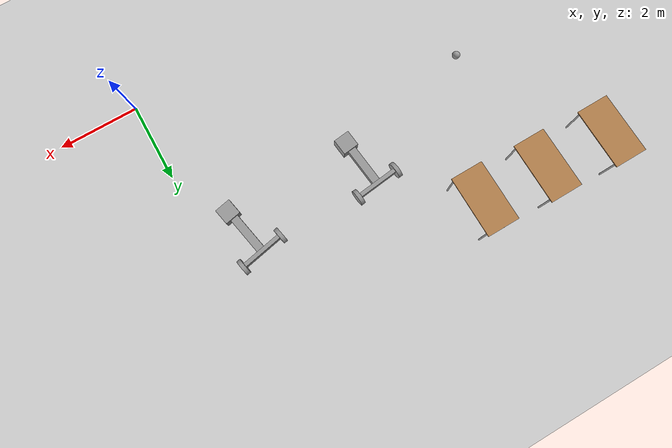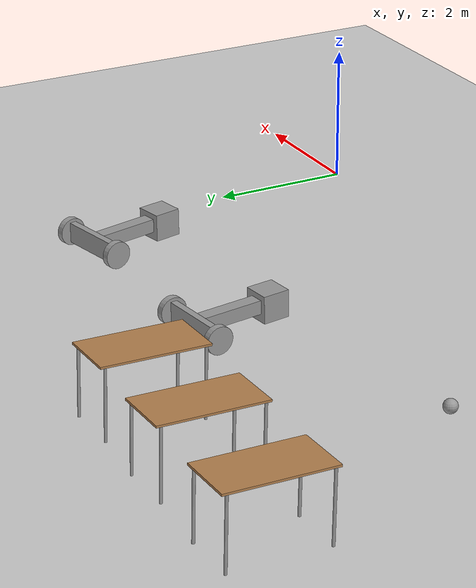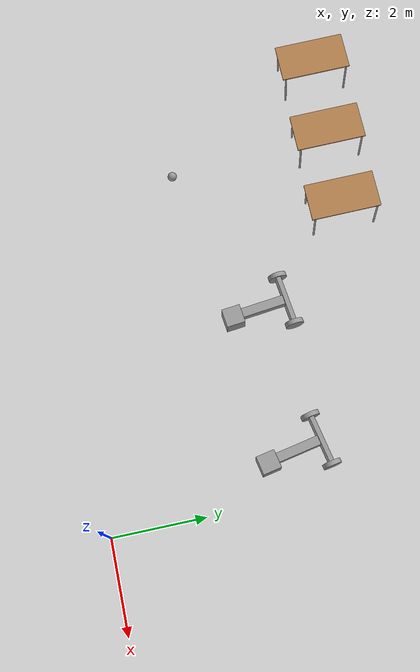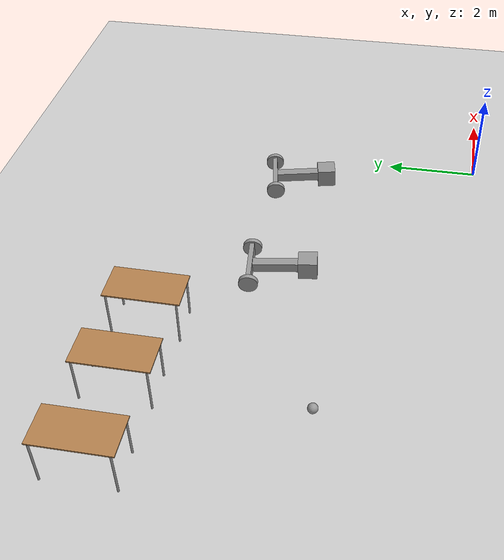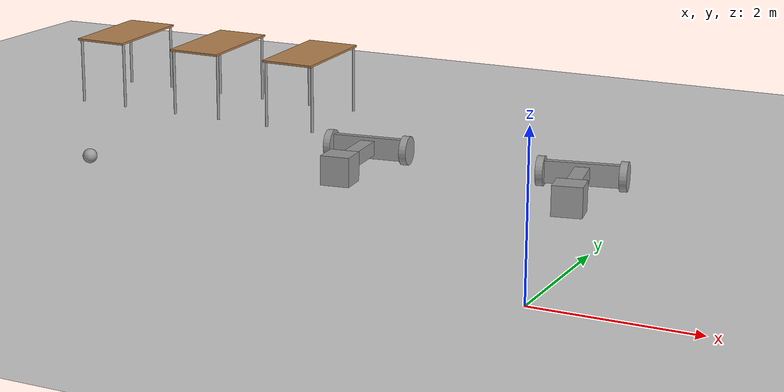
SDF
<sdf version="1.6">
 <world name="default">
  <model name="ground_plane">
   <static>1</static>
   <link name="link">
    <collision name="collision">
     <geometry><plane><normal>0 0 1</normal><size>100 100</size></plane></geometry>
     <surface>
      <contact><collide_bitmask>65535</collide_bitmask></contact>
      <friction><ode><mu>100</mu><mu2>50</mu2></ode></friction>
     </surface>
    </collision>
    <visual name="visual">
     <cast_shadows>0</cast_shadows>
     <geometry><plane><normal>0 0 1</normal><size>100 100</size></plane></geometry>
     <material>
      <script><uri>file://media/materials/scripts/gazebo.material</uri><name>Gazebo/Grey</name></script>
     </material>
    </visual>
   </link>
  </model>
  <model name="model">
   <link name="link_0">
    <pose>-0.004 -0.004 -0.339991 0 -0 0</pose>
    <inertial>
     <mass>1</mass>
     <inertia>
      <ixx>0.166667</ixx>
      <ixy>0</ixy>
      <ixz>0</ixz>
      <iyy>0.166667</iyy>
      <iyz>0</iyz>
      <izz>0.166667</izz>
     </inertia>
    </inertial>
    <visual name="visual">
     <geometry><box><size>0.3 1 0.1</size></box></geometry>
     <material>
      <lighting>1</lighting>
      <script><uri>file://media/materials/scripts/gazebo.material</uri><name>Gazebo/Grey</name></script>
      <shader type="pixel"><normal_map>__default__</normal_map></shader>
      <ambient>0.3 0.3 0.3 1</ambient>
      <diffuse>0.7 0.7 0.7 1</diffuse>
      <specular>0.01 0.01 0.01 1</specular>
      <emissive>0 0 0 1</emissive>
     </material>
    </visual>
    <collision name="collision">
     <geometry><box><size>0.3 1 0.1</size></box></geometry>
     <surface>
      <friction>
       <ode><mu>1</mu><mu2>1</mu2><fdir1>0 0 0</fdir1><slip1>0</slip1><slip2>0</slip2></ode>
       <torsional>
        <coefficient>1</coefficient>
        <patch_radius>0</patch_radius>
        <surface_radius>0</surface_radius>
        <use_patch_radius>1</use_patch_radius>
        <ode><slip>0</slip></ode>
       </torsional>
      </friction>
      <bounce><restitution_coefficient>0</restitution_coefficient><threshold>1e+06</threshold></bounce>
      <contact>
       <collide_without_contact>0</collide_without_contact>
       <collide_without_contact_bitmask>1</collide_without_contact_bitmask>
       <collide_bitmask>1</collide_bitmask>
       <ode>
        <soft_cfm>0</soft_cfm>
        <soft_erp>0.2</soft_erp>
        <kp>1e+13</kp>
        <kd>1</kd>
        <max_vel>0.01</max_vel>
        <min_depth>0</min_depth>
       </ode>
       <bullet>
        <split_impulse>1</split_impulse>
        <split_impulse_penetration_threshold>-0.01</split_impulse_penetration_threshold>
        <soft_cfm>0</soft_cfm>
        <soft_erp>0.2</soft_erp>
        <kp>1e+13</kp>
        <kd>1</kd>
       </bullet>
      </contact>
     </surface>
    </collision>
   </link>
   <link name="link_2">
    <pose>-0.004 -0.554019 -0.340035 1.5707 -0 0</pose>
    <inertial>
     <mass>1</mass>
     <inertia><ixx>0.145833</ixx><ixy>0</ixy><ixz>0</ixz><iyy>0.145833</iyy><iyz>0</iyz><izz>0.125</izz></inertia>
    </inertial>
    <visual name="visual">
     <geometry><cylinder><radius>0.2</radius><length>0.1</length></cylinder></geometry>
     <material>
      <lighting>1</lighting>
      <script><uri>file://media/materials/scripts/gazebo.material</uri><name>Gazebo/Grey</name></script>
      <shader type="pixel"><normal_map>__default__</normal_map></shader>
      <ambient>0.3 0.3 0.3 1</ambient>
      <diffuse>0.7 0.7 0.7 1</diffuse>
      <specular>0.01 0.01 0.01 1</specular>
      <emissive>0 0 0 1</emissive>
     </material>
    </visual>
    <collision name="collision">
     <geometry><cylinder><radius>0.2</radius><length>0.1</length></cylinder></geometry>
     <surface>
      <friction>
       <ode><mu>1</mu><mu2>1</mu2><fdir1>0 0 0</fdir1><slip1>0</slip1><slip2>0</slip2></ode>
       <torsional>
        <coefficient>1</coefficient>
        <patch_radius>0</patch_radius>
        <surface_radius>0</surface_radius>
        <use_patch_radius>1</use_patch_radius>
        <ode><slip>0</slip></ode>
       </torsional>
      </friction>
      <bounce><restitution_coefficient>0</restitution_coefficient><threshold>1e+06</threshold></bounce>
      <contact>
       <collide_without_contact>0</collide_without_contact>
       <collide_without_contact_bitmask>1</collide_without_contact_bitmask>
       <collide_bitmask>1</collide_bitmask>
       <ode>
        <soft_cfm>0</soft_cfm>
        <soft_erp>0.2</soft_erp>
        <kp>1e+13</kp>
        <kd>1</kd>
        <max_vel>0.01</max_vel>
        <min_depth>0</min_depth>
       </ode>
       <bullet>
        <split_impulse>1</split_impulse>
        <split_impulse_penetration_threshold>-0.01</split_impulse_penetration_threshold>
        <soft_cfm>0</soft_cfm>
        <soft_erp>0.2</soft_erp>
        <kp>1e+13</kp>
        <kd>1</kd>
       </bullet>
      </contact>
     </surface>
    </collision>
   </link>
   <link name="link_2_clone">
    <pose>-0.004 0.546019 -0.339991 1.5707 -0 0</pose>
    <inertial>
     <mass>1</mass>
     <inertia><ixx>0.145833</ixx><ixy>0</ixy><ixz>0</ixz><iyy>0.145833</iyy><iyz>0</iyz><izz>0.125</izz></inertia>
    </inertial>
    <visual name="visual">
     <geometry><cylinder><radius>0.2</radius><length>0.1</length></cylinder></geometry>
     <material>
      <lighting>1</lighting>
      <script><uri>file://media/materials/scripts/gazebo.material</uri><name>Gazebo/Grey</name></script>
      <shader type="pixel"><normal_map>__default__</normal_map></shader>
      <ambient>0.3 0.3 0.3 1</ambient>
      <diffuse>0.7 0.7 0.7 1</diffuse>
      <specular>0.01 0.01 0.01 1</specular>
      <emissive>0 0 0 1</emissive>
     </material>
    </visual>
    <collision name="collision">
     <geometry><cylinder><radius>0.2</radius><length>0.1</length></cylinder></geometry>
     <surface>
      <friction>
       <ode><mu>1</mu><mu2>1</mu2><fdir1>0 0 0</fdir1><slip1>0</slip1><slip2>0</slip2></ode>
       <torsional>
        <coefficient>1</coefficient>
        <patch_radius>0</patch_radius>
        <surface_radius>0</surface_radius>
        <use_patch_radius>1</use_patch_radius>
        <ode><slip>0</slip></ode>
       </torsional>
      </friction>
      <bounce><restitution_coefficient>0</restitution_coefficient><threshold>1e+06</threshold></bounce>
      <contact>
       <collide_without_contact>0</collide_without_contact>
       <collide_without_contact_bitmask>1</collide_without_contact_bitmask>
       <collide_bitmask>1</collide_bitmask>
       <ode>
        <soft_cfm>0</soft_cfm>
        <soft_erp>0.2</soft_erp>
        <kp>1e+13</kp>
        <kd>1</kd>
        <max_vel>0.01</max_vel>
        <min_depth>0</min_depth>
       </ode>
       <bullet>
        <split_impulse>1</split_impulse>
        <split_impulse_penetration_threshold>-0.01</split_impulse_penetration_threshold>
        <soft_cfm>0</soft_cfm>
        <soft_erp>0.2</soft_erp>
        <kp>1e+13</kp>
        <kd>1</kd>
       </bullet>
      </contact>
     </surface>
    </collision>
   </link>
   <link name="link_3">
    <pose>-0.004 -0.004 0.160009 0 -0 0</pose>
    <inertial>
     <mass>1</mass>
     <inertia>
      <ixx>0.166667</ixx>
      <ixy>0</ixy>
      <ixz>0</ixz>
      <iyy>0.166667</iyy>
      <iyz>0</iyz>
      <izz>0.166667</izz>
     </inertia>
    </inertial>
    <visual name="visual">
     <geometry><box><size>0.2 0.2 1</size></box></geometry>
     <material>
      <lighting>1</lighting>
      <script><uri>file://media/materials/scripts/gazebo.material</uri><name>Gazebo/Grey</name></script>
      <shader type="pixel"><normal_map>__default__</normal_map></shader>
      <ambient>0.3 0.3 0.3 1</ambient>
      <diffuse>0.7 0.7 0.7 1</diffuse>
      <specular>0.01 0.01 0.01 1</specular>
      <emissive>0 0 0 1</emissive>
     </material>
    </visual>
    <collision name="collision">
     <geometry><box><size>0.2 0.2 1</size></box></geometry>
     <surface>
      <friction>
       <ode><mu>1</mu><mu2>1</mu2><fdir1>0 0 0</fdir1><slip1>0</slip1><slip2>0</slip2></ode>
       <torsional>
        <coefficient>1</coefficient>
        <patch_radius>0</patch_radius>
        <surface_radius>0</surface_radius>
        <use_patch_radius>1</use_patch_radius>
        <ode><slip>0</slip></ode>
       </torsional>
      </friction>
      <bounce><restitution_coefficient>0</restitution_coefficient><threshold>1e+06</threshold></bounce>
      <contact>
       <collide_without_contact>0</collide_without_contact>
       <collide_without_contact_bitmask>1</collide_without_contact_bitmask>
       <collide_bitmask>1</collide_bitmask>
       <ode>
        <soft_cfm>0</soft_cfm>
        <soft_erp>0.2</soft_erp>
        <kp>1e+13</kp>
        <kd>1</kd>
        <max_vel>0.01</max_vel>
        <min_depth>0</min_depth>
       </ode>
       <bullet>
        <split_impulse>1</split_impulse>
        <split_impulse_penetration_threshold>-0.01</split_impulse_penetration_threshold>
        <soft_cfm>0</soft_cfm>
        <soft_erp>0.2</soft_erp>
        <kp>1e+13</kp>
        <kd>1</kd>
       </bullet>
      </contact>
     </surface>
    </collision>
   </link>
   <link name="link_5">
    <pose>0.016 0.016 0.860009 0 -0 0</pose>
    <inertial>
     <mass>1</mass>
     <inertia>
      <ixx>0.166667</ixx>
      <ixy>0</ixy>
      <ixz>0</ixz>
      <iyy>0.166667</iyy>
      <iyz>0</iyz>
      <izz>0.166667</izz>
     </inertia>
    </inertial>
    <visual name="visual">
     <geometry><box><size>0.4 0.4 0.4</size></box></geometry>
     <material>
      <lighting>1</lighting>
      <script><uri>file://media/materials/scripts/gazebo.material</uri><name>Gazebo/Grey</name></script>
      <shader type="pixel"><normal_map>__default__</normal_map></shader>
      <ambient>0.3 0.3 0.3 1</ambient>
      <diffuse>0.7 0.7 0.7 1</diffuse>
      <specular>0.01 0.01 0.01 1</specular>
      <emissive>0 0 0 1</emissive>
     </material>
    </visual>
    <collision name="collision">
     <geometry><box><size>0.4 0.4 0.4</size></box></geometry>
     <surface>
      <friction>
       <ode><mu>1</mu><mu2>1</mu2><fdir1>0 0 0</fdir1><slip1>0</slip1><slip2>0</slip2></ode>
       <torsional>
        <coefficient>1</coefficient>
        <patch_radius>0</patch_radius>
        <surface_radius>0</surface_radius>
        <use_patch_radius>1</use_patch_radius>
        <ode><slip>0</slip></ode>
       </torsional>
      </friction>
      <bounce><restitution_coefficient>0</restitution_coefficient><threshold>1e+06</threshold></bounce>
      <contact>
       <collide_without_contact>0</collide_without_contact>
       <collide_without_contact_bitmask>1</collide_without_contact_bitmask>
       <collide_bitmask>1</collide_bitmask>
       <ode>
        <soft_cfm>0</soft_cfm>
        <soft_erp>0.2</soft_erp>
        <kp>1e+13</kp>
        <kd>1</kd>
        <max_vel>0.01</max_vel>
        <min_depth>0</min_depth>
       </ode>
       <bullet>
        <split_impulse>1</split_impulse>
        <split_impulse_penetration_threshold>-0.01</split_impulse_penetration_threshold>
        <soft_cfm>0</soft_cfm>
        <soft_erp>0.2</soft_erp>
        <kp>1e+13</kp>
        <kd>1</kd>
       </bullet>
      </contact>
     </surface>
    </collision>
   </link>
   <joint name="link_0_JOINT_0" type="revolute">
    <parent>link_0</parent>
    <child>link_2</child>
    <axis>
     <xyz>1 0 0</xyz>
     <use_parent_model_frame>0</use_parent_model_frame>
     <limit>
      <lower>-1.79769e+308</lower>
      <upper>1.79769e+308</upper>
      <effort>-1</effort>
      <velocity>-1</velocity>
     </limit>
     <dynamics>
      <spring_reference>0</spring_reference>
      <spring_stiffness>0</spring_stiffness>
      <damping>0</damping>
     </dynamics>
    </axis>
    <physics>
     <ode><limit><cfm>0</cfm><erp>0.2</erp></limit><suspension><cfm>0</cfm><erp>0.2</erp></suspension></ode>
    </physics>
   </joint>
   <joint name="link_0_JOINT_1" type="revolute">
    <parent>link_0</parent>
    <child>link_2_clone</child>
    <axis>
     <xyz>1 0 0</xyz>
     <use_parent_model_frame>0</use_parent_model_frame>
     <limit>
      <lower>-1.79769e+308</lower>
      <upper>1.79769e+308</upper>
      <effort>-1</effort>
      <velocity>-1</velocity>
     </limit>
     <dynamics>
      <spring_reference>0</spring_reference>
      <spring_stiffness>0</spring_stiffness>
      <damping>0</damping>
     </dynamics>
    </axis>
    <physics>
     <ode><limit><cfm>0</cfm><erp>0.2</erp></limit><suspension><cfm>0</cfm><erp>0.2</erp></suspension></ode>
    </physics>
   </joint>
   <joint name="link_3_JOINT_2" type="fixed">
    <parent>link_3</parent>
    <child>link_0</child>
    <physics>
     <ode><limit><cfm>0</cfm><erp>0.2</erp></limit><suspension><cfm>0</cfm><erp>0.2</erp></suspension></ode>
    </physics>
   </joint>
   <joint name="link_3_JOINT_5" type="revolute">
    <parent>link_3</parent>
    <child>link_5</child>
    <axis>
     <xyz>1 0 0</xyz>
     <use_parent_model_frame>0</use_parent_model_frame>
     <limit>
      <lower>-1.79769e+308</lower>
      <upper>1.79769e+308</upper>
      <effort>-1</effort>
      <velocity>-1</velocity>
     </limit>
     <dynamics>
      <spring_reference>0</spring_reference>
      <spring_stiffness>0</spring_stiffness>
      <damping>0</damping>
     </dynamics>
    </axis>
    <physics>
     <ode><limit><cfm>0</cfm><erp>0.2</erp></limit><suspension><cfm>0</cfm><erp>0.2</erp></suspension></ode>
    </physics>
   </joint>
   <static>0</static>
   <pose>-4.10983 4.24845 0.203394 -3.4e-05 1.54904 -1.45095</pose>
  </model>
  <model name="model_clone">
   <link name="link_0">
    <pose>-0.004 -0.004 -0.339991 0 -0 0</pose>
    <inertial>
     <mass>1</mass>
     <inertia>
      <ixx>0.166667</ixx>
      <ixy>0</ixy>
      <ixz>0</ixz>
      <iyy>0.166667</iyy>
      <iyz>0</iyz>
      <izz>0.166667</izz>
     </inertia>
    </inertial>
    <visual name="visual">
     <geometry><box><size>0.3 1 0.1</size></box></geometry>
     <material>
      <lighting>1</lighting>
      <script><uri>file://media/materials/scripts/gazebo.material</uri><name>Gazebo/Grey</name></script>
      <shader type="pixel"><normal_map>__default__</normal_map></shader>
      <ambient>0.3 0.3 0.3 1</ambient>
      <diffuse>0.7 0.7 0.7 1</diffuse>
      <specular>0.01 0.01 0.01 1</specular>
      <emissive>0 0 0 1</emissive>
     </material>
    </visual>
    <collision name="collision">
     <geometry><box><size>0.3 1 0.1</size></box></geometry>
     <surface>
      <friction>
       <ode><mu>1</mu><mu2>1</mu2><fdir1>0 0 0</fdir1><slip1>0</slip1><slip2>0</slip2></ode>
       <torsional>
        <coefficient>1</coefficient>
        <patch_radius>0</patch_radius>
        <surface_radius>0</surface_radius>
        <use_patch_radius>1</use_patch_radius>
        <ode><slip>0</slip></ode>
       </torsional>
      </friction>
      <bounce><restitution_coefficient>0</restitution_coefficient><threshold>1e+06</threshold></bounce>
      <contact>
       <collide_without_contact>0</collide_without_contact>
       <collide_without_contact_bitmask>1</collide_without_contact_bitmask>
       <collide_bitmask>1</collide_bitmask>
       <ode>
        <soft_cfm>0</soft_cfm>
        <soft_erp>0.2</soft_erp>
        <kp>1e+13</kp>
        <kd>1</kd>
        <max_vel>0.01</max_vel>
        <min_depth>0</min_depth>
       </ode>
       <bullet>
        <split_impulse>1</split_impulse>
        <split_impulse_penetration_threshold>-0.01</split_impulse_penetration_threshold>
        <soft_cfm>0</soft_cfm>
        <soft_erp>0.2</soft_erp>
        <kp>1e+13</kp>
        <kd>1</kd>
       </bullet>
      </contact>
     </surface>
    </collision>
   </link>
   <link name="link_2">
    <pose>-0.004 -0.554019 -0.340035 1.5707 -0 0</pose>
    <inertial>
     <mass>1</mass>
     <inertia><ixx>0.145833</ixx><ixy>0</ixy><ixz>0</ixz><iyy>0.145833</iyy><iyz>0</iyz><izz>0.125</izz></inertia>
    </inertial>
    <visual name="visual">
     <geometry><cylinder><radius>0.2</radius><length>0.1</length></cylinder></geometry>
     <material>
      <lighting>1</lighting>
      <script><uri>file://media/materials/scripts/gazebo.material</uri><name>Gazebo/Grey</name></script>
      <shader type="pixel"><normal_map>__default__</normal_map></shader>
      <ambient>0.3 0.3 0.3 1</ambient>
      <diffuse>0.7 0.7 0.7 1</diffuse>
      <specular>0.01 0.01 0.01 1</specular>
      <emissive>0 0 0 1</emissive>
     </material>
    </visual>
    <collision name="collision">
     <geometry><cylinder><radius>0.2</radius><length>0.1</length></cylinder></geometry>
     <surface>
      <friction>
       <ode><mu>1</mu><mu2>1</mu2><fdir1>0 0 0</fdir1><slip1>0</slip1><slip2>0</slip2></ode>
       <torsional>
        <coefficient>1</coefficient>
        <patch_radius>0</patch_radius>
        <surface_radius>0</surface_radius>
        <use_patch_radius>1</use_patch_radius>
        <ode><slip>0</slip></ode>
       </torsional>
      </friction>
      <bounce><restitution_coefficient>0</restitution_coefficient><threshold>1e+06</threshold></bounce>
      <contact>
       <collide_without_contact>0</collide_without_contact>
       <collide_without_contact_bitmask>1</collide_without_contact_bitmask>
       <collide_bitmask>1</collide_bitmask>
       <ode>
        <soft_cfm>0</soft_cfm>
        <soft_erp>0.2</soft_erp>
        <kp>1e+13</kp>
        <kd>1</kd>
        <max_vel>0.01</max_vel>
        <min_depth>0</min_depth>
       </ode>
       <bullet>
        <split_impulse>1</split_impulse>
        <split_impulse_penetration_threshold>-0.01</split_impulse_penetration_threshold>
        <soft_cfm>0</soft_cfm>
        <soft_erp>0.2</soft_erp>
        <kp>1e+13</kp>
        <kd>1</kd>
       </bullet>
      </contact>
     </surface>
    </collision>
   </link>
   <link name="link_2_clone">
    <pose>-0.004 0.546019 -0.339991 1.5707 -0 0</pose>
    <inertial>
     <mass>1</mass>
     <inertia><ixx>0.145833</ixx><ixy>0</ixy><ixz>0</ixz><iyy>0.145833</iyy><iyz>0</iyz><izz>0.125</izz></inertia>
    </inertial>
    <visual name="visual">
     <geometry><cylinder><radius>0.2</radius><length>0.1</length></cylinder></geometry>
     <material>
      <lighting>1</lighting>
      <script><uri>file://media/materials/scripts/gazebo.material</uri><name>Gazebo/Grey</name></script>
      <shader type="pixel"><normal_map>__default__</normal_map></shader>
      <ambient>0.3 0.3 0.3 1</ambient>
      <diffuse>0.7 0.7 0.7 1</diffuse>
      <specular>0.01 0.01 0.01 1</specular>
      <emissive>0 0 0 1</emissive>
     </material>
    </visual>
    <collision name="collision">
     <geometry><cylinder><radius>0.2</radius><length>0.1</length></cylinder></geometry>
     <surface>
      <friction>
       <ode><mu>1</mu><mu2>1</mu2><fdir1>0 0 0</fdir1><slip1>0</slip1><slip2>0</slip2></ode>
       <torsional>
        <coefficient>1</coefficient>
        <patch_radius>0</patch_radius>
        <surface_radius>0</surface_radius>
        <use_patch_radius>1</use_patch_radius>
        <ode><slip>0</slip></ode>
       </torsional>
      </friction>
      <bounce><restitution_coefficient>0</restitution_coefficient><threshold>1e+06</threshold></bounce>
      <contact>
       <collide_without_contact>0</collide_without_contact>
       <collide_without_contact_bitmask>1</collide_without_contact_bitmask>
       <collide_bitmask>1</collide_bitmask>
       <ode>
        <soft_cfm>0</soft_cfm>
        <soft_erp>0.2</soft_erp>
        <kp>1e+13</kp>
        <kd>1</kd>
        <max_vel>0.01</max_vel>
        <min_depth>0</min_depth>
       </ode>
       <bullet>
        <split_impulse>1</split_impulse>
        <split_impulse_penetration_threshold>-0.01</split_impulse_penetration_threshold>
        <soft_cfm>0</soft_cfm>
        <soft_erp>0.2</soft_erp>
        <kp>1e+13</kp>
        <kd>1</kd>
       </bullet>
      </contact>
     </surface>
    </collision>
   </link>
   <link name="link_3">
    <pose>-0.004 -0.004 0.160009 0 -0 0</pose>
    <inertial>
     <mass>1</mass>
     <inertia>
      <ixx>0.166667</ixx>
      <ixy>0</ixy>
      <ixz>0</ixz>
      <iyy>0.166667</iyy>
      <iyz>0</iyz>
      <izz>0.166667</izz>
     </inertia>
    </inertial>
    <visual name="visual">
     <geometry><box><size>0.2 0.2 1</size></box></geometry>
     <material>
      <lighting>1</lighting>
      <script><uri>file://media/materials/scripts/gazebo.material</uri><name>Gazebo/Grey</name></script>
      <shader type="pixel"><normal_map>__default__</normal_map></shader>
      <ambient>0.3 0.3 0.3 1</ambient>
      <diffuse>0.7 0.7 0.7 1</diffuse>
      <specular>0.01 0.01 0.01 1</specular>
      <emissive>0 0 0 1</emissive>
     </material>
    </visual>
    <collision name="collision">
     <geometry><box><size>0.2 0.2 1</size></box></geometry>
     <surface>
      <friction>
       <ode><mu>1</mu><mu2>1</mu2><fdir1>0 0 0</fdir1><slip1>0</slip1><slip2>0</slip2></ode>
       <torsional>
        <coefficient>1</coefficient>
        <patch_radius>0</patch_radius>
        <surface_radius>0</surface_radius>
        <use_patch_radius>1</use_patch_radius>
        <ode><slip>0</slip></ode>
       </torsional>
      </friction>
      <bounce><restitution_coefficient>0</restitution_coefficient><threshold>1e+06</threshold></bounce>
      <contact>
       <collide_without_contact>0</collide_without_contact>
       <collide_without_contact_bitmask>1</collide_without_contact_bitmask>
       <collide_bitmask>1</collide_bitmask>
       <ode>
        <soft_cfm>0</soft_cfm>
        <soft_erp>0.2</soft_erp>
        <kp>1e+13</kp>
        <kd>1</kd>
        <max_vel>0.01</max_vel>
        <min_depth>0</min_depth>
       </ode>
       <bullet>
        <split_impulse>1</split_impulse>
        <split_impulse_penetration_threshold>-0.01</split_impulse_penetration_threshold>
        <soft_cfm>0</soft_cfm>
        <soft_erp>0.2</soft_erp>
        <kp>1e+13</kp>
        <kd>1</kd>
       </bullet>
      </contact>
     </surface>
    </collision>
   </link>
   <link name="link_5">
    <pose>0.016 0.016 0.860009 0 -0 0</pose>
    <inertial>
     <mass>1</mass>
     <inertia>
      <ixx>0.166667</ixx>
      <ixy>0</ixy>
      <ixz>0</ixz>
      <iyy>0.166667</iyy>
      <iyz>0</iyz>
      <izz>0.166667</izz>
     </inertia>
    </inertial>
    <visual name="visual">
     <geometry><box><size>0.4 0.4 0.4</size></box></geometry>
     <material>
      <lighting>1</lighting>
      <script><uri>file://media/materials/scripts/gazebo.material</uri><name>Gazebo/Grey</name></script>
      <shader type="pixel"><normal_map>__default__</normal_map></shader>
      <ambient>0.3 0.3 0.3 1</ambient>
      <diffuse>0.7 0.7 0.7 1</diffuse>
      <specular>0.01 0.01 0.01 1</specular>
      <emissive>0 0 0 1</emissive>
     </material>
    </visual>
    <collision name="collision">
     <geometry><box><size>0.4 0.4 0.4</size></box></geometry>
     <surface>
      <friction>
       <ode><mu>1</mu><mu2>1</mu2><fdir1>0 0 0</fdir1><slip1>0</slip1><slip2>0</slip2></ode>
       <torsional>
        <coefficient>1</coefficient>
        <patch_radius>0</patch_radius>
        <surface_radius>0</surface_radius>
        <use_patch_radius>1</use_patch_radius>
        <ode><slip>0</slip></ode>
       </torsional>
      </friction>
      <bounce><restitution_coefficient>0</restitution_coefficient><threshold>1e+06</threshold></bounce>
      <contact>
       <collide_without_contact>0</collide_without_contact>
       <collide_without_contact_bitmask>1</collide_without_contact_bitmask>
       <collide_bitmask>1</collide_bitmask>
       <ode>
        <soft_cfm>0</soft_cfm>
        <soft_erp>0.2</soft_erp>
        <kp>1e+13</kp>
        <kd>1</kd>
        <max_vel>0.01</max_vel>
        <min_depth>0</min_depth>
       </ode>
       <bullet>
        <split_impulse>1</split_impulse>
        <split_impulse_penetration_threshold>-0.01</split_impulse_penetration_threshold>
        <soft_cfm>0</soft_cfm>
        <soft_erp>0.2</soft_erp>
        <kp>1e+13</kp>
        <kd>1</kd>
       </bullet>
      </contact>
     </surface>
    </collision>
   </link>
   <joint name="link_0_JOINT_0" type="revolute">
    <parent>link_0</parent>
    <child>link_2</child>
    <axis>
     <xyz>1 0 0</xyz>
     <use_parent_model_frame>0</use_parent_model_frame>
     <limit>
      <lower>-1.79769e+308</lower>
      <upper>1.79769e+308</upper>
      <effort>-1</effort>
      <velocity>-1</velocity>
     </limit>
     <dynamics>
      <spring_reference>0</spring_reference>
      <spring_stiffness>0</spring_stiffness>
      <damping>0</damping>
     </dynamics>
    </axis>
    <physics>
     <ode><limit><cfm>0</cfm><erp>0.2</erp></limit><suspension><cfm>0</cfm><erp>0.2</erp></suspension></ode>
    </physics>
   </joint>
   <joint name="link_0_JOINT_1" type="revolute">
    <parent>link_0</parent>
    <child>link_2_clone</child>
    <axis>
     <xyz>1 0 0</xyz>
     <use_parent_model_frame>0</use_parent_model_frame>
     <limit>
      <lower>-1.79769e+308</lower>
      <upper>1.79769e+308</upper>
      <effort>-1</effort>
      <velocity>-1</velocity>
     </limit>
     <dynamics>
      <spring_reference>0</spring_reference>
      <spring_stiffness>0</spring_stiffness>
      <damping>0</damping>
     </dynamics>
    </axis>
    <physics>
     <ode><limit><cfm>0</cfm><erp>0.2</erp></limit><suspension><cfm>0</cfm><erp>0.2</erp></suspension></ode>
    </physics>
   </joint>
   <joint name="link_3_JOINT_2" type="fixed">
    <parent>link_3</parent>
    <child>link_0</child>
    <physics>
     <ode><limit><cfm>0</cfm><erp>0.2</erp></limit><suspension><cfm>0</cfm><erp>0.2</erp></suspension></ode>
    </physics>
   </joint>
   <joint name="link_3_JOINT_5" type="revolute">
    <parent>link_3</parent>
    <child>link_5</child>
    <axis>
     <xyz>1 0 0</xyz>
     <use_parent_model_frame>0</use_parent_model_frame>
     <limit>
      <lower>-1.79769e+308</lower>
      <upper>1.79769e+308</upper>
      <effort>-1</effort>
      <velocity>-1</velocity>
     </limit>
     <dynamics>
      <spring_reference>0</spring_reference>
      <spring_stiffness>0</spring_stiffness>
      <damping>0</damping>
     </dynamics>
    </axis>
    <physics>
     <ode><limit><cfm>0</cfm><erp>0.2</erp></limit><suspension><cfm>0</cfm><erp>0.2</erp></suspension></ode>
    </physics>
   </joint>
   <static>0</static>
   <pose>-0.978271 4.30124 0.202786 -6.9e-05 1.55084 -1.37401</pose>
  </model>
  <model name="table">
   <static>1</static>
   <link name="link">
    <collision name="surface">
     <pose>0 0 1 0 -0 0</pose>
     <geometry><box><size>1.5 0.8 0.03</size></box></geometry>
     <surface><friction><ode><mu>0.6</mu><mu2>0.6</mu2></ode></friction></surface>
    </collision>
    <visual name="visual1">
     <pose>0 0 1 0 -0 0</pose>
     <geometry><box><size>1.5 0.8 0.03</size></box></geometry>
     <material>
      <script><uri>file://media/materials/scripts/gazebo.material</uri><name>Gazebo/Wood</name></script>
     </material>
    </visual>
    <collision name="front_left_leg">
     <pose>0.68 0.38 0.5 0 -0 0</pose>
     <geometry><cylinder><radius>0.02</radius><length>1</length></cylinder></geometry>
    </collision>
    <visual name="front_left_leg">
     <pose>0.68 0.38 0.5 0 -0 0</pose>
     <geometry><cylinder><radius>0.02</radius><length>1</length></cylinder></geometry>
     <material>
      <script><uri>file://media/materials/scripts/gazebo.material</uri><name>Gazebo/Grey</name></script>
     </material>
    </visual>
    <collision name="front_right_leg">
     <pose>0.68 -0.38 0.5 0 -0 0</pose>
     <geometry><cylinder><radius>0.02</radius><length>1</length></cylinder></geometry>
    </collision>
    <visual name="front_right_leg">
     <pose>0.68 -0.38 0.5 0 -0 0</pose>
     <geometry><cylinder><radius>0.02</radius><length>1</length></cylinder></geometry>
     <material>
      <script><uri>file://media/materials/scripts/gazebo.material</uri><name>Gazebo/Grey</name></script>
     </material>
    </visual>
    <collision name="back_right_leg">
     <pose>-0.68 -0.38 0.5 0 -0 0</pose>
     <geometry><cylinder><radius>0.02</radius><length>1</length></cylinder></geometry>
    </collision>
    <visual name="back_right_leg">
     <pose>-0.68 -0.38 0.5 0 -0 0</pose>
     <geometry><cylinder><radius>0.02</radius><length>1</length></cylinder></geometry>
     <material>
      <script><uri>file://media/materials/scripts/gazebo.material</uri><name>Gazebo/Grey</name></script>
     </material>
    </visual>
    <collision name="back_left_leg">
     <pose>-0.68 0.38 0.5 0 -0 0</pose>
     <geometry><cylinder><radius>0.02</radius><length>1</length></cylinder></geometry>
    </collision>
    <visual name="back_left_leg">
     <pose>-0.68 0.38 0.5 0 -0 0</pose>
     <geometry><cylinder><radius>0.02</radius><length>1</length></cylinder></geometry>
     <material>
      <script><uri>file://media/materials/scripts/gazebo.material</uri><name>Gazebo/Grey</name></script>
     </material>
    </visual>
   </link>
   <pose>-9.26795 6.32639 0.051294 0.010581 -0.023783 1.5805</pose>
  </model>
  <model name="table_clone">
   <static>1</static>
   <link name="link">
    <collision name="surface">
     <pose>0 0 1 0 -0 0</pose>
     <geometry><box><size>1.5 0.8 0.03</size></box></geometry>
     <surface><friction><ode><mu>0.6</mu><mu2>0.6</mu2></ode></friction></surface>
    </collision>
    <visual name="visual1">
     <pose>0 0 1 0 -0 0</pose>
     <geometry><box><size>1.5 0.8 0.03</size></box></geometry>
     <material>
      <script><uri>file://media/materials/scripts/gazebo.material</uri><name>Gazebo/Wood</name></script>
     </material>
    </visual>
    <collision name="front_left_leg">
     <pose>0.68 0.38 0.5 0 -0 0</pose>
     <geometry><cylinder><radius>0.02</radius><length>1</length></cylinder></geometry>
    </collision>
    <visual name="front_left_leg">
     <pose>0.68 0.38 0.5 0 -0 0</pose>
     <geometry><cylinder><radius>0.02</radius><length>1</length></cylinder></geometry>
     <material>
      <script><uri>file://media/materials/scripts/gazebo.material</uri><name>Gazebo/Grey</name></script>
     </material>
    </visual>
    <collision name="front_right_leg">
     <pose>0.68 -0.38 0.5 0 -0 0</pose>
     <geometry><cylinder><radius>0.02</radius><length>1</length></cylinder></geometry>
    </collision>
    <visual name="front_right_leg">
     <pose>0.68 -0.38 0.5 0 -0 0</pose>
     <geometry><cylinder><radius>0.02</radius><length>1</length></cylinder></geometry>
     <material>
      <script><uri>file://media/materials/scripts/gazebo.material</uri><name>Gazebo/Grey</name></script>
     </material>
    </visual>
    <collision name="back_right_leg">
     <pose>-0.68 -0.38 0.5 0 -0 0</pose>
     <geometry><cylinder><radius>0.02</radius><length>1</length></cylinder></geometry>
    </collision>
    <visual name="back_right_leg">
     <pose>-0.68 -0.38 0.5 0 -0 0</pose>
     <geometry><cylinder><radius>0.02</radius><length>1</length></cylinder></geometry>
     <material>
      <script><uri>file://media/materials/scripts/gazebo.material</uri><name>Gazebo/Grey</name></script>
     </material>
    </visual>
    <collision name="back_left_leg">
     <pose>-0.68 0.38 0.5 0 -0 0</pose>
     <geometry><cylinder><radius>0.02</radius><length>1</length></cylinder></geometry>
    </collision>
    <visual name="back_left_leg">
     <pose>-0.68 0.38 0.5 0 -0 0</pose>
     <geometry><cylinder><radius>0.02</radius><length>1</length></cylinder></geometry>
     <material>
      <script><uri>file://media/materials/scripts/gazebo.material</uri><name>Gazebo/Grey</name></script>
     </material>
    </visual>
   </link>
   <pose>-7.56082 6.27034 0.051294 0.010581 -0.023783 1.5805</pose>
  </model>
  <model name="table_clone_clone">
   <static>1</static>
   <link name="link">
    <collision name="surface">
     <pose>0 0 1 0 -0 0</pose>
     <geometry><box><size>1.5 0.8 0.03</size></box></geometry>
     <surface><friction><ode><mu>0.6</mu><mu2>0.6</mu2></ode></friction></surface>
    </collision>
    <visual name="visual1">
     <pose>0 0 1 0 -0 0</pose>
     <geometry><box><size>1.5 0.8 0.03</size></box></geometry>
     <material>
      <script><uri>file://media/materials/scripts/gazebo.material</uri><name>Gazebo/Wood</name></script>
     </material>
    </visual>
    <collision name="front_left_leg">
     <pose>0.68 0.38 0.5 0 -0 0</pose>
     <geometry><cylinder><radius>0.02</radius><length>1</length></cylinder></geometry>
    </collision>
    <visual name="front_left_leg">
     <pose>0.68 0.38 0.5 0 -0 0</pose>
     <geometry><cylinder><radius>0.02</radius><length>1</length></cylinder></geometry>
     <material>
      <script><uri>file://media/materials/scripts/gazebo.material</uri><name>Gazebo/Grey</name></script>
     </material>
    </visual>
    <collision name="front_right_leg">
     <pose>0.68 -0.38 0.5 0 -0 0</pose>
     <geometry><cylinder><radius>0.02</radius><length>1</length></cylinder></geometry>
    </collision>
    <visual name="front_right_leg">
     <pose>0.68 -0.38 0.5 0 -0 0</pose>
     <geometry><cylinder><radius>0.02</radius><length>1</length></cylinder></geometry>
     <material>
      <script><uri>file://media/materials/scripts/gazebo.material</uri><name>Gazebo/Grey</name></script>
     </material>
    </visual>
    <collision name="back_right_leg">
     <pose>-0.68 -0.38 0.5 0 -0 0</pose>
     <geometry><cylinder><radius>0.02</radius><length>1</length></cylinder></geometry>
    </collision>
    <visual name="back_right_leg">
     <pose>-0.68 -0.38 0.5 0 -0 0</pose>
     <geometry><cylinder><radius>0.02</radius><length>1</length></cylinder></geometry>
     <material>
      <script><uri>file://media/materials/scripts/gazebo.material</uri><name>Gazebo/Grey</name></script>
     </material>
    </visual>
    <collision name="back_left_leg">
     <pose>-0.68 0.38 0.5 0 -0 0</pose>
     <geometry><cylinder><radius>0.02</radius><length>1</length></cylinder></geometry>
    </collision>
    <visual name="back_left_leg">
     <pose>-0.68 0.38 0.5 0 -0 0</pose>
     <geometry><cylinder><radius>0.02</radius><length>1</length></cylinder></geometry>
     <material>
      <script><uri>file://media/materials/scripts/gazebo.material</uri><name>Gazebo/Grey</name></script>
     </material>
    </visual>
   </link>
   <pose>-5.93246 6.21056 0.051294 0.010581 -0.023783 1.5805</pose>
  </model>
  <model name="my_ball">
   <link name="link_0">
    <inertial>
     <mass>1</mass>
     <inertia><ixx>0.1</ixx><ixy>0</ixy><ixz>0</ixz><iyy>0.1</iyy><iyz>0</iyz><izz>0.1</izz></inertia>
    </inertial>
    <visual name="visual">
     <geometry><sphere><radius>0.1</radius></sphere></geometry>
     <material>
      <lighting>1</lighting>
      <script><uri>file://media/materials/scripts/gazebo.material</uri><name>Gazebo/Grey</name></script>
      <shader type="pixel"><normal_map>__default__</normal_map></shader>
      <ambient>0.3 0.3 0.3 1</ambient>
      <diffuse>1 1 1 1</diffuse>
      <specular>1 1 1 1</specular>
      <emissive>1 1 1 1</emissive>
     </material>
    </visual>
    <collision name="collision">
     <geometry><sphere><radius>0.1</radius></sphere></geometry>
     <surface>
      <friction>
       <ode><mu>1</mu><mu2>1</mu2><fdir1>0 0 0</fdir1><slip1>0</slip1><slip2>0</slip2></ode>
       <torsional>
        <coefficient>1</coefficient>
        <patch_radius>0</patch_radius>
        <surface_radius>0</surface_radius>
        <use_patch_radius>1</use_patch_radius>
        <ode><slip>0</slip></ode>
       </torsional>
      </friction>
      <bounce><restitution_coefficient>0</restitution_coefficient><threshold>1e+06</threshold></bounce>
      <contact>
       <collide_without_contact>0</collide_without_contact>
       <collide_without_contact_bitmask>1</collide_without_contact_bitmask>
       <collide_bitmask>1</collide_bitmask>
       <ode>
        <soft_cfm>0</soft_cfm>
        <soft_erp>0.2</soft_erp>
        <kp>1e+13</kp>
        <kd>1</kd>
        <max_vel>0.01</max_vel>
        <min_depth>0</min_depth>
       </ode>
       <bullet>
        <split_impulse>1</split_impulse>
        <split_impulse_penetration_threshold>-0.01</split_impulse_penetration_threshold>
        <soft_cfm>0</soft_cfm>
        <soft_erp>0.2</soft_erp>
        <kp>1e+13</kp>
        <kd>1</kd>
       </bullet>
      </contact>
     </surface>
    </collision>
   </link>
   <static>0</static>
   <pose>-7.52825 2.74752 0.1 0 -0 0</pose>
  </model>
 </world>
</sdf>
